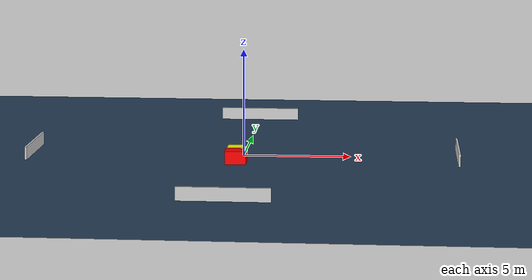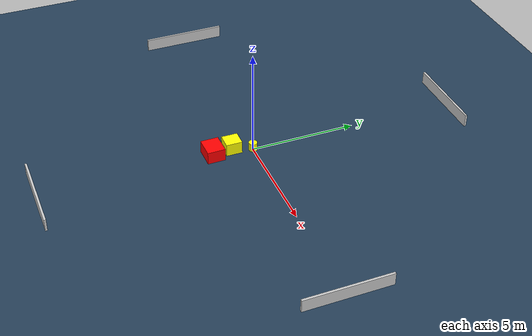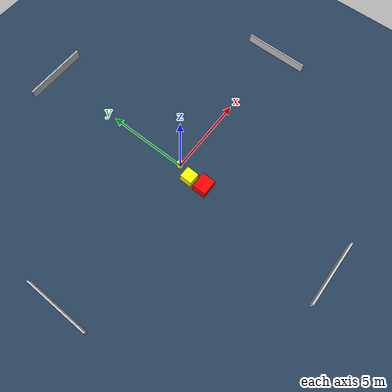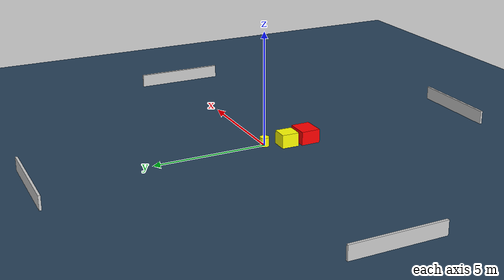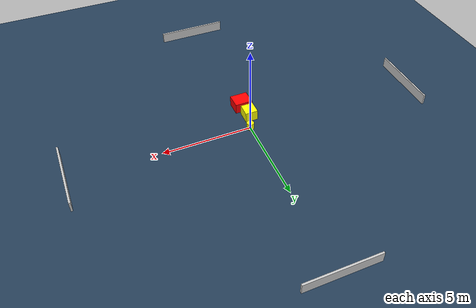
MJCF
<?xml version="1.0" ?>
<mujoco model="generated_environment">
  <option timestep="0.01" integrator="RK4" cone="elliptic"/>
  <default>
    <geom density="1"/>
  </default>
  <asset>
    <texture builtin="gradient" height="3072" name="skybox" rgb1="0.3 0.5 0.7" rgb2="0 0 0" type="skybox" width="512"/>
    <texture builtin="checker" height="300" name="groundplane" rgb1="0.2 0.3 0.4" rgb2="0.1 0.2 0.3" type="2d" width="300"/>
    <material name="groundplane" reflectance="0.2" texrepeat="5 5" texture="groundplane"/>
  </asset>
  <worldbody>
    <light dir="0 0 -1" directional="true" pos="0 0 1.5"/>
    <geom condim="3" friction="0.5 0.005 0.001" material="groundplane" name="floor" pos="0 0 0" size="0 0 0.05" type="plane"/>
    <body name="walls">
      <geom name="wall_1" condim="4" pos="-10.0 0.0 0.3" rgba="0.800000011920929 0.800000011920929 0.800000011920929 1.0" size="0.05 2.0 0.3" type="box"/>
      <geom name="wall_2" condim="4" pos="10.0 0.0 0.3" rgba="0.800000011920929 0.800000011920929 0.800000011920929 1.0" size="0.05 2.0 0.3" type="box"/>
      <geom name="wall_3" condim="4" pos="0.0 -10.0 0.3" rgba="0.800000011920929 0.800000011920929 0.800000011920929 1.0" size="2.0 0.05 0.3" type="box"/>
      <geom name="wall_4" condim="4" pos="0.0 10.0 0.3" rgba="0.800000011920929 0.800000011920929 0.800000011920929 1.0" size="2.0 0.05 0.3" type="box"/>
    </body>
    <body name="robot">
      <joint name="joint_x" type="slide" pos="0 0 0" axis="1 0 0"/>
      <joint name="joint_y" type="slide" pos="0 0 0" axis="0 1 0"/>
      <geom name="robot" type="cylinder" pos="0.0 0.0 0.2" size="0.2 0.2 0.0" mass="5.0" friction="1.0 0.005 0.0001" condim="4" rgba="1.0 1.0 0.0 1.0"/>
    </body>
    <body name="obstacle_1_movable">
      <geom name="obstacle_1_movable" condim="4" pos="-0.31828380767426373 -0.915215634353544 0.3" euler="0 0 359.30803242125864" friction="0.0 0.005 0.001" rgba="1.0 1.0 0.0 1.0" size="0.35432949988295614 0.38096326759535415 0.3" type="box" mass="0.1"/>
      <joint type="free"/>
    </body>
    <body name="obstacle_2_static">
      <geom name="obstacle_2_static" condim="4" pos="-0.21598326414097693 -1.8654105785777138 0.3" euler="0 0 180.66471670182568" friction="0.0 0.005 0.001" rgba="1.0 0.0 0.0 1.0" size="0.4890906665590728 0.42258359871001405 0.3" type="box"/>
    </body>
  </worldbody>
  <actuator>
    <motor name="actuator_x" joint="joint_x" gear="1" ctrlrange="-1 1"/>
    <motor name="actuator_y" joint="joint_y" gear="1" ctrlrange="-1 1"/>
  </actuator>
</mujoco>
